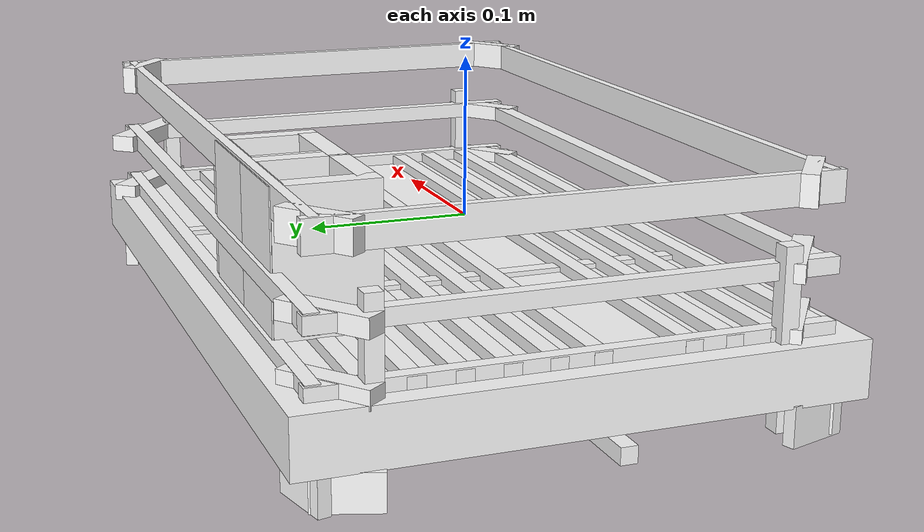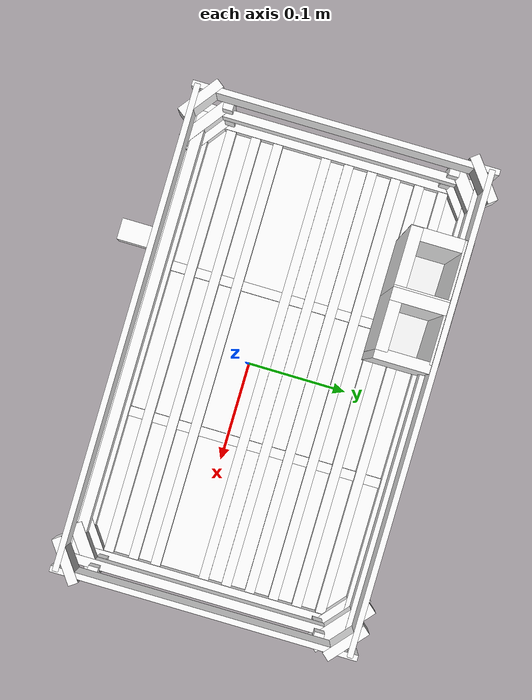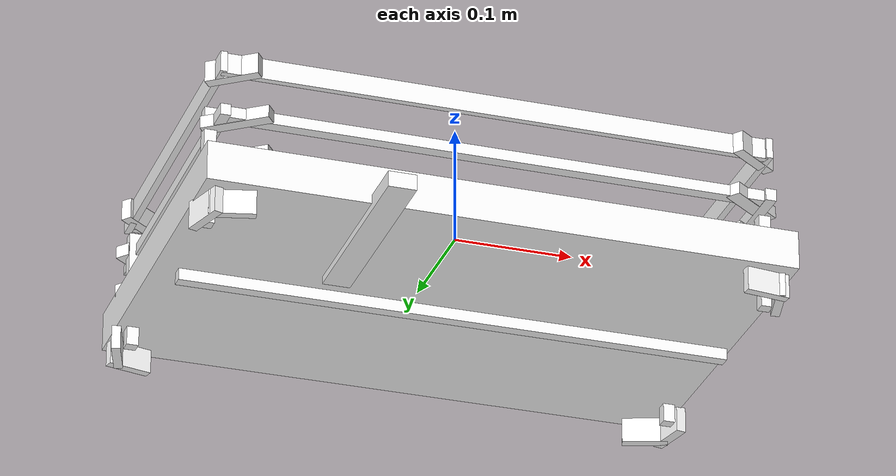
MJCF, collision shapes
<?xml version='1.0' encoding='utf-8'?>
<mujoco model="model">
  <option timestep="0.002" gravity="0.0 0.0 -9.81" />
  <compiler angle="radian" />
  <asset>
    <mesh file="visual/DishRack036.obj" name="DishRack036_vis" />
    <texture file="visual/T_BC001.png" name="DishRack036_material" type="2d" />
    <material name="DishRack036_material" rgba="1 1 1 1.0" texture="DishRack036_material" shininess="0.4472135901451111" specular="0.3103448502657381" />
  </asset>
  <default>
    <default class="visual">
      <geom conaffinity="0" contype="0" group="1" type="mesh" />
    </default>
    <default class="collision">
      <geom group="0" rgba="1 1 1 0.25" density="1.0" solref="0.004 1" solimp="0.998 0.998 0.001" />
    </default>
    <default class="spawn">
      <geom group="0" rgba="1 1 1 0.5" contype="0" conaffinity="0" />
      <site group="0" rgba="1 1 1 0.5" />
    </default>
    <default class="region">
      <geom group="1" conaffinity="0" contype="0" rgba="0 1 0 0" mass="0" />
    </default>
  </default>
  <worldbody>
    <body>
      <body name="object">
        <geom mesh="DishRack036_vis" type="mesh" solimp="0.998 0.998 0.001" solref="0.001 1" friction="0.95 0.3 0.1" class="visual" material="DishRack036_material" />
        <geom type="box" pos="-0.22947581 0.02686079 0.06221380" size="0.0028157150372862816 0.14510944485664368 0.00884435884654522" quat="1.0 0.0 0.0 0.0" class="collision" />
        <geom type="box" pos="0.22847964 0.02686079 0.06221380" size="0.0028157150372862816 0.14510944485664368 0.008844359777867794" quat="1.0 0.0 0.0 0.0" class="collision" />
        <geom type="box" pos="-0.00018634 -0.11313392 0.06221380" size="0.2300364077091217 0.0028157527558505535 0.008844379335641861" quat="1.0 0.0 0.0 0.0" class="collision" />
        <geom type="box" pos="-0.00018634 0.16488007 0.06221380" size="0.2300364077091217 0.0028157527558505535 0.008844379335641861" quat="1.0 0.0 0.0 0.0" class="collision" />
        <geom type="box" pos="-0.21864034 -0.10709335 0.06221380" size="0.0047290208749473095 0.02244636043906212 0.008844379335641861" quat="0.44595879316329956 0.0 -0.0 -0.895053505897522" class="collision" />
        <geom type="box" pos="0.21856333 -0.10709335 0.06221380" size="0.0047290208749473095 0.02244636043906212 0.008844379335641861" quat="0.45397841930389404 0.0 0.0 0.8910126686096191" class="collision" />
        <geom type="box" pos="0.21856333 0.15810730 0.06221380" size="0.0047290208749473095 0.02244636043906212 0.008844379335641861" quat="0.4161307215690613 0.0 -0.0 -0.9093047976493835" class="collision" />
        <geom type="box" pos="-0.22008345 0.15967627 0.06221380" size="0.0047290208749473095 0.02244636043906212 0.008844379335641861" quat="0.8985337018966675 0.0 -0.0 -0.4389045536518097" class="collision" />
        <geom type="box" pos="-0.22008345 0.15563503 0.01964181" size="0.006435925140976906 0.02738596685230732 0.0053179021924734116" quat="0.8985337018966675 0.0 -0.0 -0.4389045536518097" class="collision" />
        <geom type="box" pos="0.21856335 0.15810730 0.01964181" size="0.008051875978708267 0.034807246178388596 0.005334566812962294" quat="0.4161307215690613 0.0 -0.0 -0.9093047976493835" class="collision" />
        <geom type="box" pos="0.21774192 -0.10116494 0.01964181" size="0.006375713739544153 0.026857590302824974 0.005145430564880371" quat="0.45397841930389404 0.0 0.0 0.8910126686096191" class="collision" />
        <geom type="box" pos="-0.21448152 -0.10468519 0.01964181" size="0.005537142977118492 0.028849048539996147 0.005285108927637339" quat="0.44595879316329956 0.0 -0.0 -0.895053505897522" class="collision" />
        <geom type="box" pos="-0.00018634 0.16681272 0.01964181" size="0.23003588616847992 0.004101691767573357 0.005505347158759832" quat="1.0 0.0 0.0 0.0" class="collision" />
        <geom type="box" pos="-0.00018634 -0.10975426 0.01964181" size="0.2300363928079605 0.005271158646792173 0.0048043434508144855" quat="1.0 0.0 0.0 0.0" class="collision" />
        <geom type="box" pos="0.22847965 0.02686079 0.01964181" size="0.004552329890429974 0.145109161734581 0.005163750145584345" quat="1.0 0.0 0.0 0.0" class="collision" />
        <geom type="box" pos="-0.22732992 0.02686079 0.01964181" size="0.004278179258108139 0.1451091766357422 0.0048370519652962685" quat="1.0 0.0 0.0 0.0" class="collision" />
        <geom type="box" pos="-0.22732992 0.02686079 -0.01560055" size="0.004278179723769426 0.14510919153690338 0.0048370519652962685" quat="1.0 0.0 0.0 0.0" class="collision" />
        <geom type="box" pos="0.22847965 0.02686079 -0.01560055" size="0.004552330821752548 0.14510919153690338 0.005163752008229494" quat="1.0 0.0 0.0 0.0" class="collision" />
        <geom type="box" pos="-0.00018634 -0.10975426 -0.01560055" size="0.2300363928079605 0.005271158646792173 0.0048043434508144855" quat="1.0 0.0 0.0 0.0" class="collision" />
        <geom type="box" pos="-0.00018634 0.16681272 -0.01560055" size="0.23003600537776947 0.004101691767573357 0.005505347158759832" quat="1.0 0.0 0.0 0.0" class="collision" />
        <geom type="box" pos="-0.21448152 -0.10468519 -0.01560055" size="0.005537142977118492 0.028849048539996147 0.005285108927637339" quat="0.44595879316329956 0.0 -0.0 -0.895053505897522" class="collision" />
        <geom type="box" pos="0.21774192 -0.10116494 -0.01560055" size="0.006375713739544153 0.026857590302824974 0.005145430564880371" quat="0.45397841930389404 0.0 0.0 0.8910126686096191" class="collision" />
        <geom type="box" pos="0.21856335 0.15810730 -0.01560055" size="0.008051875978708267 0.034807246178388596 0.005334566812962294" quat="0.4161307215690613 0.0 -0.0 -0.9093047976493835" class="collision" />
        <geom type="box" pos="-0.22008345 0.15563503 -0.01560055" size="0.006435925140976906 0.02738596685230732 0.0053179021924734116" quat="0.43890443444252014 0.0 0.0 0.8985337615013123" class="collision" />
        <geom type="box" pos="-0.10005567 -0.08696101 -0.05069523" size="0.011633907444775105 0.08737347275018692 0.006693056784570217" quat="1.0 0.0 0.0 0.0" class="collision" />
        <geom type="box" pos="0.00000000 0.00054081 -0.06964181" size="0.2316509187221527 0.004999999888241291 0.005000018049031496" quat="1.0 0.0 0.0 0.0" class="collision" />
        <geom type="box" pos="0.00000000 0.01679046 -0.01663304" size="0.2316509187221527 0.004999999888241291 0.005000028293579817" quat="1.0 0.0 0.0 0.0" class="collision" />
        <geom type="box" pos="0.00000000 0.04078866 -0.01663304" size="0.2316509187221527 0.004999999888241291 0.0050000278279185295" quat="1.0 0.0 0.0 0.0" class="collision" />
        <geom type="box" pos="0.00000000 0.06564921 -0.01663304" size="0.2316509187221527 0.004999999888241291 0.005000027362257242" quat="1.0 0.0 0.0 0.0" class="collision" />
        <geom type="box" pos="0.00000000 0.09066951 -0.01663304" size="0.2316509187221527 0.004999999888241291 0.005000026896595955" quat="1.0 0.0 0.0 0.0" class="collision" />
        <geom type="box" pos="0.00000000 0.11562532 -0.01663304" size="0.2316509187221527 0.004999999888241291 0.005000026430934668" quat="1.0 0.0 0.0 0.0" class="collision" />
        <geom type="box" pos="0.00000000 0.14072193 -0.01663304" size="0.2316509187221527 0.004999999888241291 0.00500002596527338" quat="1.0 0.0 0.0 0.0" class="collision" />
        <geom type="box" pos="0.00000000 -0.03442915 -0.01663304" size="0.2316509187221527 0.004999999888241291 0.005000025499612093" quat="1.0 0.0 0.0 0.0" class="collision" />
        <geom type="box" pos="0.00000000 -0.05789524 -0.01663304" size="0.2316509187221527 0.004999999888241291 0.005000025499612093" quat="1.0 0.0 0.0 0.0" class="collision" />
        <geom type="box" pos="0.00000000 -0.08406111 -0.01663304" size="0.2316509187221527 0.004999999888241291 0.005000025033950806" quat="1.0 0.0 0.0 0.0" class="collision" />
        <geom type="box" pos="-0.07470357 0.02792981 -0.02028269" size="0.005000005941838026 0.13706862926483154 0.004999999888241291" quat="1.0 0.0 0.0 0.0" class="collision" />
        <geom type="box" pos="0.08015209 0.02792981 -0.02028269" size="0.005000005941838026 0.13706862926483154 0.004999999888241291" quat="1.0 0.0 0.0 0.0" class="collision" />
        <geom type="box" pos="0.00000000 0.02543537 -0.03478507" size="0.2451341450214386 0.15756088495254517 0.016560696065425873" quat="1.0 0.0 0.0 0.0" class="collision" />
        <geom type="box" pos="-0.23758645 -0.10373267 -0.06138735" size="0.003715973347425461 0.018598495051264763 0.011697626672685146" quat="0.9888724088668823 0.0 0.0 0.14876627922058105" class="collision" />
        <geom type="box" pos="-0.21980247 -0.11651067 -0.06138735" size="0.0037159735802561045 0.018598496913909912 0.010588769800961018" quat="0.7894787192344666 0.0 0.0 0.6137779355049133" class="collision" />
        <geom type="box" pos="0.23786344 -0.10244352 -0.06138735" size="0.003715973114594817 0.018598496913909912 0.010061859153211117" quat="0.1196681410074234 0.0 0.0 0.9928139448165894" class="collision" />
        <geom type="box" pos="0.22225155 -0.11779983 -0.06138735" size="0.003715973114594817 0.018598495051264763 0.010504848323762417" quat="0.6604228615760803 0.0 0.0 0.7508938908576965" class="collision" />
        <geom type="box" pos="-0.23971130 0.15348528 -0.06138735" size="0.0037159728817641735 0.018598495051264763 0.01050062570720911" quat="0.9873002171516418 0.0 -0.0 -0.15886566042900085" class="collision" />
        <geom type="box" pos="-0.22572140 0.17033252 -0.06138735" size="0.0037159728817641735 0.018598495051264763 0.01048376876860857" quat="0.7831640839576721 0.0 -0.0 -0.6218150854110718" class="collision" />
        <geom type="box" pos="0.22423756 0.16968696 -0.06177853" size="0.004222465213388205 0.01917300932109356 0.011212901212275028" quat="0.579494833946228 0.0 -0.0 -0.814975917339325" class="collision" />
        <geom type="box" pos="0.24110603 0.15561697 -0.06177853" size="0.004341336898505688 0.018530216068029404 0.011212901212275028" quat="0.10639040172100067 0.0 -0.0 -0.9943244457244873" class="collision" />
        <geom type="box" pos="-0.09789798 0.13806103 0.02881724" size="0.006339846178889275 0.02944556251168251 0.04069886356592178" quat="1.0 0.0 0.0 0.0" class="collision" />
        <geom type="box" pos="-0.07433291 0.11439628 0.02881724" size="0.02944556437432766 0.005818084813654423 0.04069886356592178" quat="1.0 0.0 0.0 0.0" class="collision" />
        <geom type="box" pos="-0.07433291 0.16408439 0.02881724" size="0.02944556251168251 0.004284609574824572 0.04069886356592178" quat="1.0 0.0 0.0 0.0" class="collision" />
        <geom type="box" pos="-0.04201451 0.13806103 0.02881724" size="0.005486209876835346 0.02944556251168251 0.04069886356592178" quat="1.0 0.0 0.0 0.0" class="collision" />
        <geom type="box" pos="-0.07636705 0.13806103 -0.00476647" size="0.006318694446235895 0.027309071272611618 0.02724984660744667" quat="0.6689807176589966 0.0 0.743279755115509 0.0" class="collision" />
        <geom type="box" pos="-0.13498691 0.13806103 -0.00476647" size="0.006318694446235895 0.027309071272611618 0.02724984660744667" quat="0.6689807176589966 0.0 0.743279755115509 0.0" class="collision" />
        <geom type="box" pos="-0.10063437 0.13806103 0.02881724" size="0.005486209876835346 0.02944556251168251 0.04069886356592178" quat="1.0 0.0 0.0 0.0" class="collision" />
        <geom type="box" pos="-0.13295276 0.16408439 0.02881724" size="0.02944556251168251 0.004284609574824572 0.04069886356592178" quat="1.0 0.0 0.0 0.0" class="collision" />
        <geom type="box" pos="-0.13295276 0.11439628 0.02881724" size="0.02944556437432766 0.005818084813654423 0.04069886356592178" quat="1.0 0.0 0.0 0.0" class="collision" />
        <geom type="box" pos="-0.15651783 0.13806103 0.02881724" size="0.006339846178889275 0.02944556251168251 0.04069886356592178" quat="1.0 0.0 0.0 0.0" class="collision" />
        <geom type="box" pos="-0.23211288 0.13863622 -0.01663304" size="0.004999999888241291 0.004999999888241291 0.05080225691199303" quat="1.0 0.0 0.0 0.0" class="collision" />
        <geom type="box" pos="-0.23211288 -0.08693115 -0.01663304" size="0.004999999888241291 0.004999999888241291 0.05080225691199303" quat="1.0 0.0 0.0 0.0" class="collision" />
        <geom type="box" pos="0.23299901 -0.08693115 -0.01663304" size="0.004999999888241291 0.004999999888241291 0.05080225691199303" quat="1.0 0.0 0.0 0.0" class="collision" />
        <geom type="box" pos="0.23299901 0.13863622 -0.01663304" size="0.004999999888241291 0.004999999888241291 0.05080225691199303" quat="1.0 0.0 0.0 0.0" class="collision" />
        <geom class="region" name="reg_int_0" type="box" pos="-0.0013649599999999984 0.003955335000000004 0.074697645" size="0.20921583 0.099151085 0.084975555" />
        <geom size="0.24436933 0.17454952 0.07214714" pos="0.0 0.0 -0.0" name="reg_bbox" class="region" type="box" quat="1.0 0.0 0.0 0.0" />
        </body>
    </body>
  </worldbody>
  <actuator />
</mujoco>
